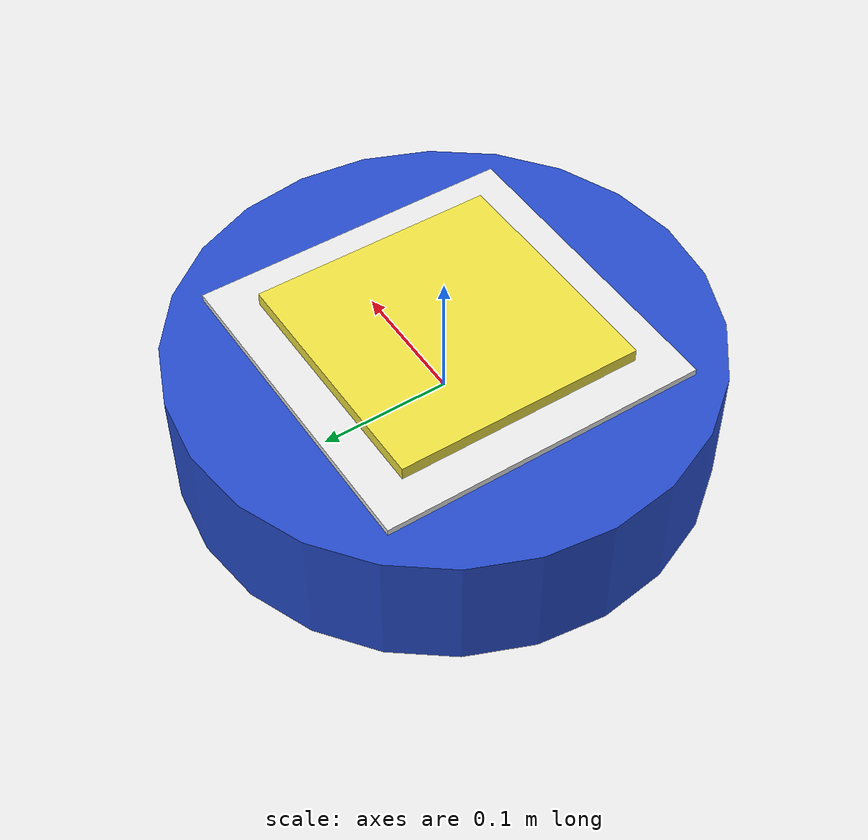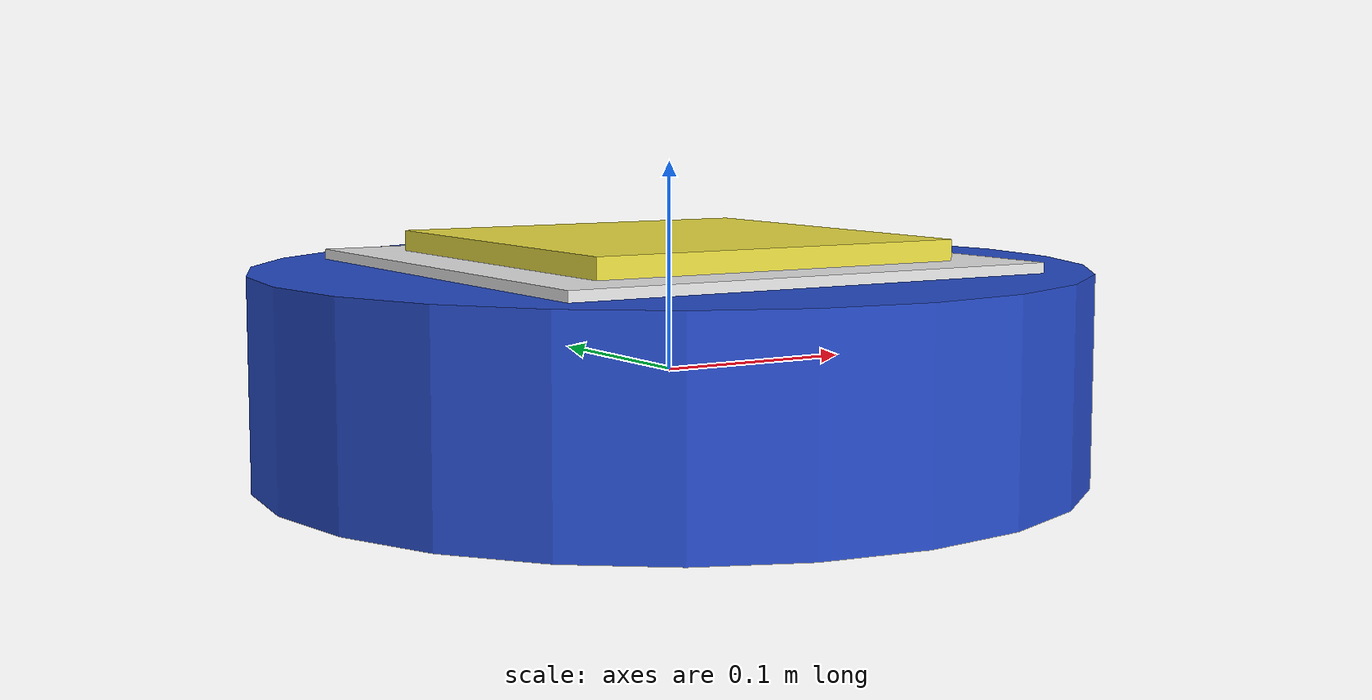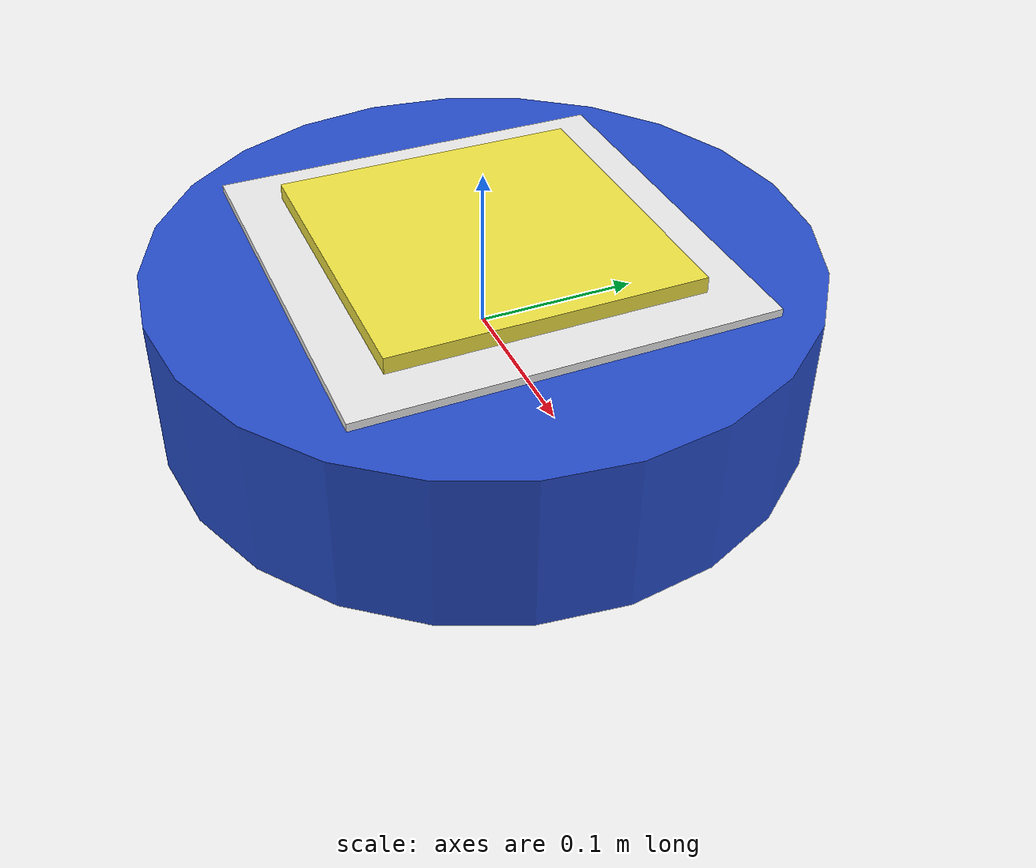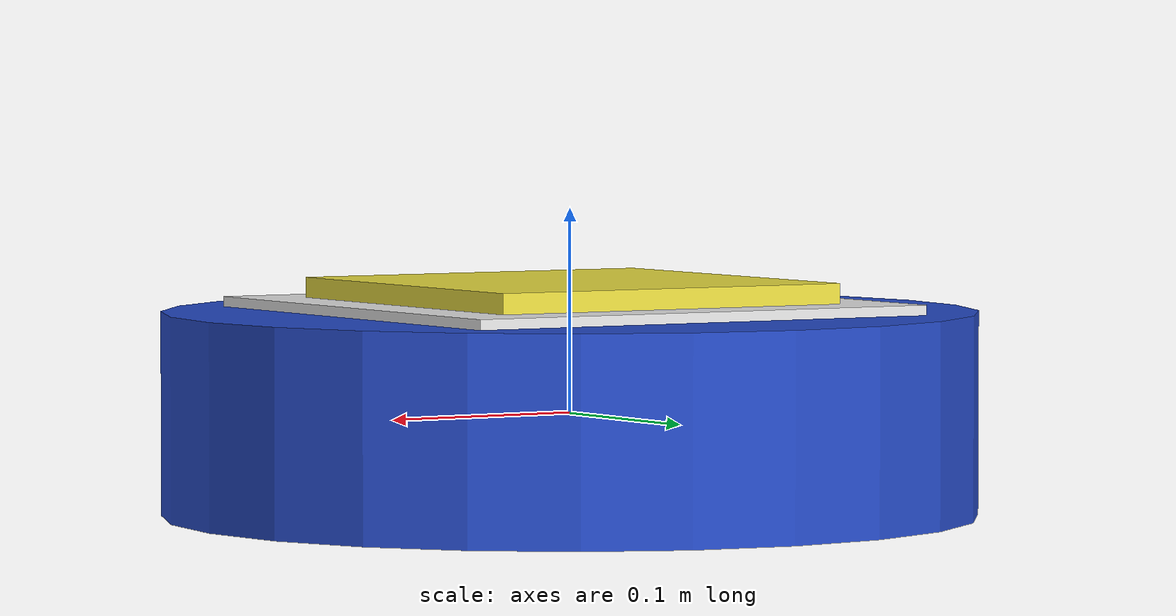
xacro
<?xml version="1.0"?>

<robot name="roomba" xmlns:xacro="http://ros.org/wiki/xacro">

   <link name="world" />

	<joint name="fixed" type="floating">
		<origin xyz="0.0 0.0 0.0" rpy="0 0 0" />
    	<parent link="world"/>
    	<child link="my_roomba"/>
  	</joint>

   <link name="my_roomba">
      <inertial>
         <origin xyz="0 0 0" />
         <mass value="1.0" />
         <inertia  ixx="0.1" ixy="0.0"  ixz="0.0"  iyy="0.1"  iyz="0.0"  izz="0.1" />
      </inertial>
      <visual>
         <origin xyz="0 0 0.0"/>
         <geometry>
            <cylinder length="0.10" radius="0.2" />
         </geometry>
      </visual>
      <collision>
         <origin xyz="0 0 0.0"/>
         <geometry>
            <cylinder length="0.11" radius="0.22" />
         </geometry>
      </collision>
   </link>

   <joint name="aruco_bg_joint" type="fixed">
      <origin xyz="0.0 0.0 0.05" rpy="0.0 0.0 0.0" />
      <parent link="my_roomba" />
      <child link="intruso_bg" />
   </joint>

   <link name="intruso_bg">
      <visual>
         <geometry>
            <box size="0.25 0.25 0.01" />
         </geometry>
      </visual>
      <inertial>
         <origin xyz="0 0 0" />
         <mass value="0.01" />
         <inertia  ixx="0.01" ixy="0.0"  ixz="0.0"  iyy="0.01"  iyz="0.0"  izz="0.01" />
      </inertial>
      <collision>
         <origin xyz="0 0 0.0"/>
         <geometry>
            <box size="0.22 0.22 0.01" />
         </geometry>
      </collision>
   </link>

   <joint name="aruco_joint" type="fixed">
      <origin xyz="0.0 0.0 0.01" rpy="0.0 0.0 0.0" />
      <parent link="intruso_bg" />
      <child link="intruso" />
   </joint>

   <link name="intruso">
      <visual>
         <geometry>
            <box size="0.19 0.19 0.01" />
         </geometry>
      </visual>
      <inertial>
         <origin xyz="0 0 0" />
         <mass value="0.01" />
         <inertia  ixx="0.01" ixy="0.0"  ixz="0.0"  iyy="0.01"  iyz="0.0"  izz="0.01" />
      </inertial>
      <collision>
         <origin xyz="0 0 0.0"/>
         <geometry>
            <box size="0.18 0.18 0.01" />
         </geometry>
      </collision>
   </link>

   <gazebo reference="intruso">
      <material>roomba/intruso</material>
   </gazebo>
   <gazebo reference="intruso_bg">
      <material>Gazebo/WHITE</material>
   </gazebo>
   <gazebo reference="my_roomba">
      <material>Gazebo/BLUE</material>
   </gazebo>

</robot>
